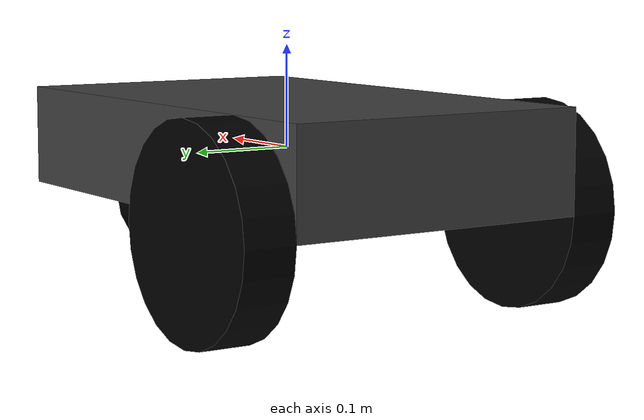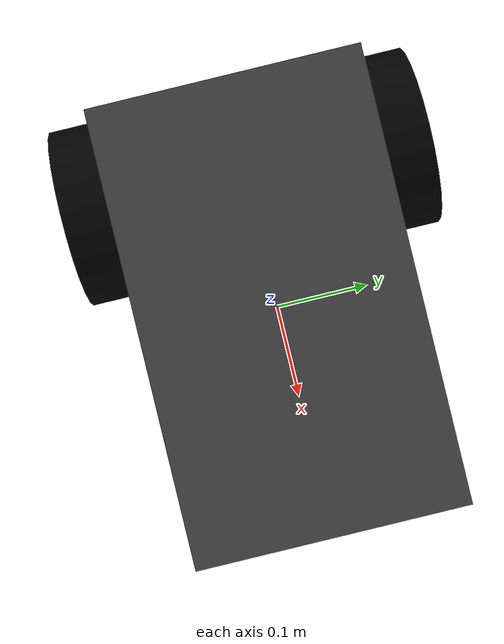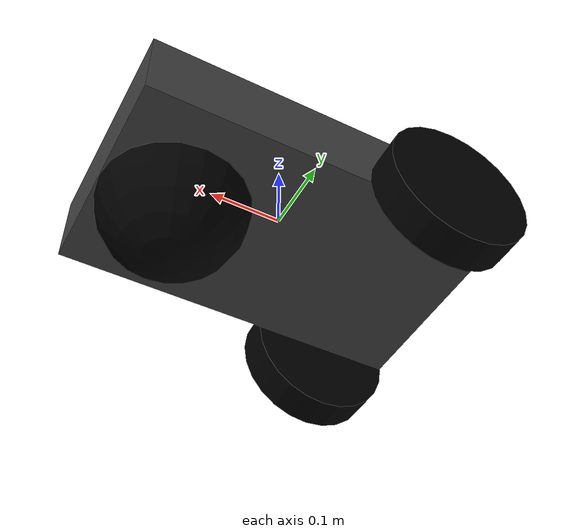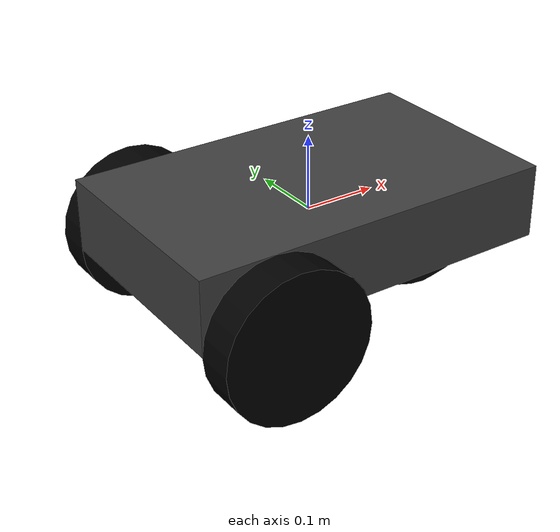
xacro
<?xml version="1.0"?>

<robot name="differential_drive_robot" xmlns:xacro="http://www.ros.org/wiki/xacro">

    <!-- Robot Parameters -->
    <xacro:property name="PI" value="3.14159265"/>
    <xacro:property name="body_length" value="0.5"/>
    <xacro:property name="body_width" value="0.3"/>
    <xacro:property name="body_height" value="0.1"/>
    <xacro:property name="body_density" value="7850.0"/> <!-- Steel -->
    <xacro:property name="body_mass" value="${body_density * body_length * body_height * body_width}"/>
    <xacro:property name="body_inertia_x" value="${1.0/12.0 * body_mass * (body_height*body_height + body_width*body_width)}"/>
    <xacro:property name="body_inertia_y" value="${1.0/12.0 * body_mass * (body_length*body_length + body_height*body_height)}"/>
    <xacro:property name="body_inertia_z" value="${1.0/12.0 * body_mass * (body_length*body_length + body_width*body_width)}"/>

    <xacro:property name="wheel_radius" value="0.1"/>
    <xacro:property name="wheel_width" value="0.05"/>
    <xacro:property name="wheel_separation" value="${body_width + wheel_width}"/>
    <xacro:property name="wheel_offset" value="${body_length/2 - wheel_radius}"/>
    <xacro:property name="wheel_density" value="900"/> <!-- Ruber -->
    <xacro:property name="wheel_mass" value="${wheel_density * PI * wheel_radius * wheel_radius * wheel_width}"/>
    <xacro:property name="wheel_inertia_x" value="${1.0/12.0 * wheel_mass * (3*wheel_radius*wheel_radius + wheel_width*wheel_width)}"/>
    <xacro:property name="wheel_inertia_y" value="${1.0/12.0 * wheel_mass * (3*wheel_radius*wheel_radius + wheel_width*wheel_width)}"/>
    <xacro:property name="wheel_inertia_z" value="${1.0/2.0 * wheel_mass * wheel_radius * wheel_radius}"/>

    <xacro:property name="caster_radius" value="0.1"/>
    <xacro:property name="caster_offset" value="${body_length/2 - caster_radius}"/>
    <xacro:property name="caster_density" value="0.1"/>
    <xacro:property name="caster_mass" value="${caster_density * 4.0/3.0 * PI * caster_radius * caster_radius * caster_radius}"/>
    <xacro:property name="caster_inertia_x" value="${2.0/5.0 * caster_mass * caster_radius * caster_radius}"/>
    <xacro:property name="caster_inertia_y" value="${2.0/5.0 * caster_mass * caster_radius * caster_radius}"/>
    <xacro:property name="caster_inertia_z" value="${2.0/5.0 * caster_mass * caster_radius * caster_radius}"/>

    <!-- Control Parameters -->
    <xacro:property name="max_linear_acceleration" value="10"/>

    <!-- Links -->

    <!-- Body Link -->
    <link name="body_link">
        <visual>
            <origin xyz="0.0 0.0 0.0" rpy="0.0 0.0 0.0"/>
            <geometry>
                <box size="${body_length} ${body_width} ${body_height}"/>
            </geometry>
            <material name="body_material">
                <color rgba="0.25 0.25 0.25 1.0"/>
            </material>
        </visual>
        <collision>
            <origin xyz="0.0 0.0 0.0" rpy="0.0 0.0 0.0"/>
            <geometry>
                <box size="${body_length} ${body_width} ${body_height}"/>
            </geometry>
        </collision>
        <inertial>
            <mass value="10"/>
            <inertia ixx="${body_inertia_x}" ixy="0.0" ixz="0.0" iyy="${body_inertia_y}" iyz="0" izz="${body_inertia_z}"/>
            <origin xyz="0 0 0" rpy="0 0 0"/>
        </inertial>
    </link>

    <!-- Left Wheel -->
    <link name="left_wheel_link">
        <visual>
            <origin xyz="0.0 0.0 0.0" rpy="1.570795 0.0 0.0"/>
            <geometry>
                <cylinder radius="${wheel_radius}" length="${wheel_width}"/>
            </geometry>
            <material name="wheel_material">
                <color rgba="0.0 0.0 0.0 1.0"/>
            </material>
        </visual>
        <collision>
            <origin xyz="0.0 0.0 0.0" rpy="1.570795 0.0 0.0"/>
            <geometry>
                <cylinder radius="${wheel_radius}" length="${wheel_width}"/>
            </geometry>
        </collision>
        <inertial>
            <mass value="2"/>
            <inertia ixx="${wheel_inertia_x}" ixy="0.0" ixz="0.0" iyy="${wheel_inertia_y}" iyz="0" izz="${wheel_inertia_z}"/>
            <origin xyz="0.0 0.0 0.0" rpy="1.570795 0.0 0.0"/>
        </inertial>
    </link>

    <!-- Right Wheel -->
    <link name="right_wheel_link">
        <visual>
            <origin xyz="0.0 0.0 0.0" rpy="1.570795 0.0 0.0"/>
            <geometry>
                <cylinder radius="${wheel_radius}" length="${wheel_width}"/>
            </geometry>
            <material name="wheel_material">
                <color rgba="0.0 0.0 0.0 1.0"/>
            </material>
        </visual>
        <collision>
            <origin xyz="0.0 0.0 0.0" rpy="1.570795 0.0 0.0"/>
            <geometry>
                <cylinder radius="${wheel_radius}" length="${wheel_width}"/>
            </geometry>
        </collision>
        <inertial>
            <mass value="2"/>
            <inertia ixx="${wheel_inertia_x}" ixy="0.0" ixz="0.0" iyy="${wheel_inertia_y}" iyz="0" izz="${wheel_inertia_z}"/>
            <origin xyz="0.0 0.0 0.0" rpy="1.570795 0.0 0.0"/>
        </inertial>
    </link>

    <!-- Caster Wheel -->
    <link name="caster_link">
        <visual>
            <origin xyz="0.0 0.0 0.0" rpy="0.0 0.0 0.0"/>
            <geometry>
                <sphere radius="${caster_radius}"/>
            </geometry>
            <material name="caster_material">
                <color rgba="0.0 0.0 0.0 1.0"/>
            </material>
        </visual>
        <collision>
            <origin xyz="0.0 0.0 0.0" rpy="0.0 0.0 0.0"/>
            <geometry>
                <sphere radius="${caster_radius}"/>
            </geometry>
        </collision>
        <inertial>
            <mass value="0.5"/>
            <inertia ixx="${caster_inertia_x}" ixy="0.0" ixz="0.0" iyy="${caster_inertia_y}" iyz="0" izz="${caster_inertia_z}"/>
            <origin xyz="0 0 0" rpy="0 0 0"/>
        </inertial>
    </link>

    <!-- Joints -->

    <!-- Left Wheel Joint -->
    <joint name="left_wheel_joint" type="continuous">
        <origin xyz="-${wheel_offset} ${wheel_separation/2} -${wheel_radius/2}" rpy="0 0 0"/>
        <parent link="body_link"/>
        <child link="left_wheel_link"/>
        <axis xyz="0 1 0"/>
        <limit effort="100" velocity="10.0"/>
        <dynamics damping="0.1" friction="0.1"/>
    </joint>

    <!-- Right Wheel Joint -->
    <joint name="right_wheel_joint" type="continuous">
        <origin xyz="-${wheel_offset} ${-wheel_separation/2} -${wheel_radius/2}" rpy="0 0 0"/>
        <parent link="body_link"/>
        <child link="right_wheel_link"/>
        <axis xyz="0 1 0"/>
        <limit effort="100" velocity="10.0"/>
        <dynamics damping="0.1" friction="0.1"/>
    </joint>

    <!-- Caster Wheel Joint (fixed) -->
    <joint name="caster_joint" type="fixed">
        <origin xyz="${caster_offset} 0 -${caster_radius/2}" rpy="0 0 0"/>
        <parent link="body_link"/>
        <child link="caster_link"/>
    </joint>

    <!-- Gazebo Parameters -->
    <gazebo reference="body_link">
    <!-- Zemin ile sürtünme -->
        <mu1>1.0</mu1>
        <mu2>1.0</mu2>

        <!-- Lazer sensör -->
        <sensor name="lidar" type="gpu_lidar">
            <always_on>1</always_on>
            <update_rate>10</update_rate>
            <visualize>true</visualize>

            <!-- Gazebo tarafındaki topic -->
            <topic>/scan</topic>

            <!-- 2D lidar için tipik ray taraması -->
            <ray>
                <scan>
                    <horizontal>
                        <samples>360</samples>
                        <resolution>1</resolution>
                        <min_angle>-3.14159</min_angle>
                        <max_angle>3.14159</max_angle>
                    </horizontal>
                </scan>
                <range>
                    <min>0.10</min>
                    <max>10.0</max>
                    <resolution>0.01</resolution>
                </range>
            </ray>
        </sensor>
    </gazebo>

    <gazebo reference="right_wheel_link">
        <mu1>1.0</mu1>
        <mu2>1.0</mu2>
    </gazebo>

    <gazebo reference="left_wheel_link">
        <mu1>1.0</mu1>
        <mu2>1.0</mu2>
    </gazebo>

    <gazebo reference="caster_link">
        <mu1>0.000001</mu1>
        <mu2>0.000001</mu2>
    </gazebo>

    <!-- Gazebo Plugins -->
    <gazebo>
        <plugin filename="gz-sim-diff-drive-system" name="gz::sim::systems::DiffDrive">
            <right_joint>right_wheel_joint</right_joint>
            <left_joint>left_wheel_joint</left_joint>
            <wheel_separation>${wheel_separation}</wheel_separation>
            <wheel_radius>${wheel_radius}</wheel_radius>
            <max_linear_acceleration>${max_linear_acceleration}</max_linear_acceleration>
            <odom_publish_frequency>100</odom_publish_frequency>
            <topic>cmd_vel</topic>
            <odom_topic>odom</odom_topic>
        </plugin>

        <plugin filename="gz-sim-joint-state-publisher-system" name="gz::sim::systems::JointStatePublisher">
            <topic>joint_states</topic>
            <joint_name>right_wheel_joint</joint_name>
            <joint_name>left_wheel_joint</joint_name>
        </plugin>
    </gazebo>

</robot>
